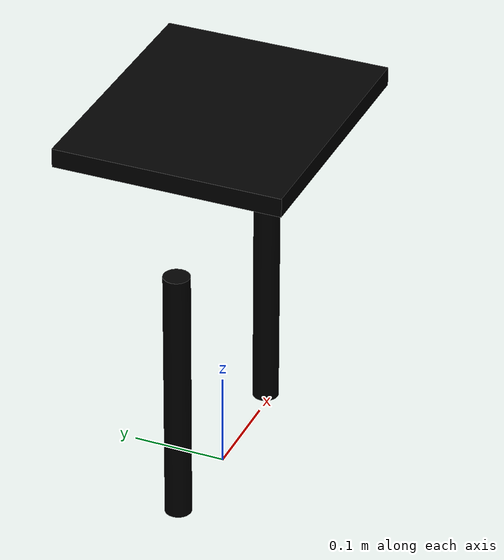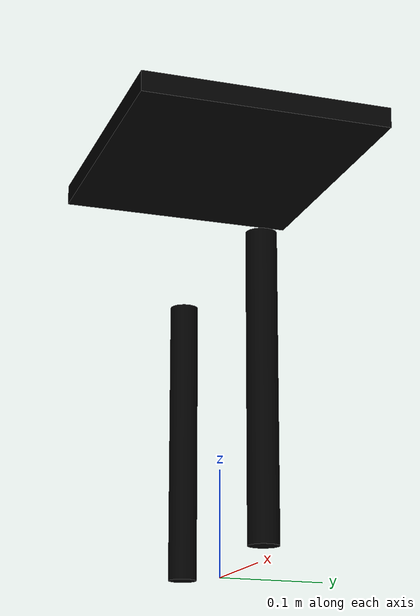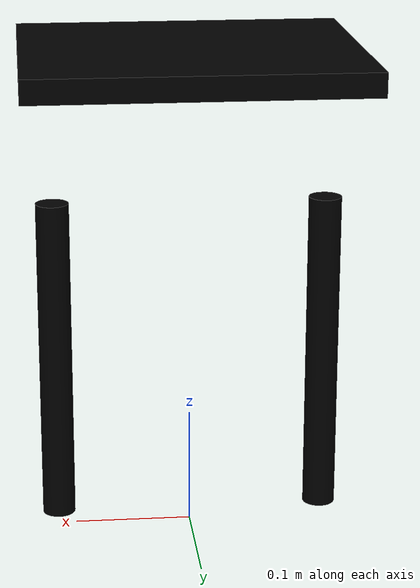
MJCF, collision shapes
<mujoco model="chair_bernhard_0146">
  <custom>
    <numeric data="-0.025053 0.074995 0.03398 -0.707107 -8e-06 0.707107 -8e-06" name="0_part0_initpos" />
    <numeric data="-0.25 0.224993 0.034049 0.707107 8e-06 0.707107 -8e-06" name="1_part1_initpos" />
    <numeric data="-0.274994 -0.18096 0.010682 0.002099 -0.005231 -0.928024 0.372477" name="2_part2_initpos" />
  </custom>
  <asset>
    <mesh file="chair_bernhard_0146/left_leg.stl" name="0_part0" scale="0.576 0.576 0.576" />
    <mesh file="chair_bernhard_0146/right_leg.stl" name="1_part1" scale="0.576 0.576 0.576" />
    <mesh file="chair_bernhard_0146/seat.stl" name="2_part2" scale="0.576 0.576 0.576" />
    <texture file="../textures/light-wood.png" name="tex-light-wood" type="2d" />
    <material name="light-wood" reflectance="0.5" texrepeat="20 20" texture="tex-light-wood" texuniform="true" />
  </asset>
  <worldbody>
  <inertial mass="5.0" diaginertia="0.05 0.05 0.05" pos="0 0 0" />
  <body name="combined_body" pos="0 0 -0.03" quat="0 0 0 1"><geom conaffinity="0" contype="0" density="0" material="light-wood" mesh="0_part0" name="0_part0_geom" pos="-0.115 0.0 0.182" rgba="0.82 0.71 0.55 1" solref="0.001 1" type="mesh" quat="1 0 0 0" />
      <geom density="50" name="noviz_collision_0_part0_1" pos="-0.115 0.0 0.182" rgba="0 0 0 0" size="0.014 0.14" solref="0.001 1" type="cylinder" quat="1 0 0 0" />
      <geom density="50" name="noviz_collision_0_part0_2" pos="-0.115 0.0 0.182" rgba="0 0 0 0" size="0.014 0.14" solref="0.001 1" type="cylinder" quat="1 0 0 0" />
      <geom density="50" name="noviz_collision_0_part0_3" pos="-0.115 0.0 0.182" rgba="0 0 0 0" size="0.014 0.14" solref="0.001 1" type="cylinder" quat="1 0 0 0" />
      <site group="1" name="0_part0_ltgt_site0" pos="-0.115 0.0 0.182" rgba="0 0 0 0" size="0.01 0.01 0.01" type="sphere" quat="1 0 0 0" />
      <site group="1" name="0_part0_rtgt_site0" pos="-0.115 0.0 0.182" rgba="0 0 0 0" size="0.01 0.01 0.01" type="sphere" quat="1 0 0 0" />
      <site name="part1-part3,0,conn_site1" pos="-0.115 0.0 0.182" quat="1 0 0 0" rgba="0.9019 0.0980 0.2941 0.3" size="0.01" />
      <site name="0_part0_corner_site1" pos="-0.115 0.0 0.182" rgba="0 0 0 0" size="0.0057" quat="1 0 0 0" />
      <site name="0_part0_corner_site2" pos="-0.115 0.0 0.182" rgba="0 0 0 0" size="0.0057" quat="1 0 0 0" />
      <site name="0_part0_corner_site3" pos="-0.115 0.0 0.182" rgba="0 0 0 0" size="0.0057" quat="1 0 0 0" />
      <site name="0_part0_corner_site4" pos="-0.115 0.0 0.182" rgba="0 0 0 0" size="0.0057" quat="1 0 0 0" />
      <site name="0_part0_corner_site5" pos="-0.115 0.0 0.182" rgba="0 0 0 0" size="0.0057" quat="1 0 0 0" />
      <site name="0_part0_corner_site6" pos="-0.115 0.0 0.182" rgba="0 0 0 0" size="0.0057" quat="1 0 0 0" />
      <site name="0_part0_bottom_site" pos="-0.115 0.0 0.182" rgba="0 0 0 0" size="0.0057" quat="1 0 0 0" />
      <site name="0_part0_top_site" pos="-0.115 0.0 0.182" rgba="0 0 0 0" size="0.0057" quat="1 0 0 0" />
      <site name="0_part0_horizontal_radius_site" pos="-0.115 0.0 0.182" rgba="0 0 0 0" size="0.0057" quat="1 0 0 0" />
    <geom conaffinity="0" contype="0" density="0" material="light-wood" mesh="1_part1" name="1_part1_geom" pos="0.1152 0.0 0.182" rgba="0.82 0.71 0.55 1" solref="0.001 1" type="mesh" quat="1 0 0 0" />
      <geom density="50" name="noviz_collision_1_part1_1" pos="0.1152 0.0 0.182" rgba="0 0 0 0" size="0.014 0.14" solref="0.001 1" type="cylinder" quat="1 0 0 0" />
      <geom density="50" name="noviz_collision_1_part1_2" pos="0.1152 0.0 0.182" rgba="0 0 0 0" size="0.014 0.14" solref="0.001 1" type="cylinder" quat="1 0 0 0" />
      <geom density="50" name="noviz_collision_1_part1_3" pos="0.1152 0.0 0.182" rgba="0 0 0 0" size="0.014 0.14" solref="0.001 1" type="cylinder" quat="1 0 0 0" />
      <site group="1" name="1_part1_ltgt_site0" pos="0.1152 0.0 0.182" rgba="0 0 0 0" size="0.01 0.01 0.01" type="sphere" quat="1 0 0 0" />
      <site group="1" name="1_part1_rtgt_site0" pos="0.1152 0.0 0.182" rgba="0 0 0 0" size="0.01 0.01 0.01" type="sphere" quat="1 0 0 0" />
      <site name="part2-part3,0,conn_site2" pos="0.1152 0.0 0.182" quat="1 0 0 0" rgba="0.2352 0.7058 0.2941 0.3" size="0.01" />
      <site name="1_part1_corner_site1" pos="0.1152 0.0 0.182" rgba="0 0 0 0" size="0.0057" quat="1 0 0 0" />
      <site name="1_part1_corner_site2" pos="0.1152 0.0 0.182" rgba="0 0 0 0" size="0.0057" quat="1 0 0 0" />
      <site name="1_part1_corner_site3" pos="0.1152 0.0 0.182" rgba="0 0 0 0" size="0.0057" quat="1 0 0 0" />
      <site name="1_part1_corner_site4" pos="0.1152 0.0 0.182" rgba="0 0 0 0" size="0.0057" quat="1 0 0 0" />
      <site name="1_part1_corner_site5" pos="0.1152 0.0 0.182" rgba="0 0 0 0" size="0.0057" quat="1 0 0 0" />
      <site name="1_part1_corner_site6" pos="0.1152 0.0 0.182" rgba="0 0 0 0" size="0.0057" quat="1 0 0 0" />
      <site name="1_part1_bottom_site" pos="0.1152 0.0 0.182" rgba="0 0 0 0" size="0.0057" quat="1 0 0 0" />
      <site name="1_part1_top_site" pos="0.1152 0.0 0.182" rgba="0 0 0 0" size="0.0057" quat="1 0 0 0" />
      <site name="1_part1_horizontal_radius_site" pos="0.1152 0.0 0.182" rgba="0 0 0 0" size="0.0057" quat="1 0 0 0" />
    <geom conaffinity="0" contype="0" density="0" material="light-wood" mesh="2_part2" name="2_part2_geom" pos="0.0 0.0 0.4416" rgba="0.82 0.71 0.55 1" solref="0.001 1" type="mesh" quat="1 0 0 0" />
      <geom density="50" name="noviz_collision_2_part2_1" pos="0.0 0.0 0.4416" rgba="0 0 0 0" size="0.14 0.12 0.01" solref="0.001 1" type="box" quat="1 0 0 0" />
      <geom density="50" name="noviz_collision_2_part2_2" pos="0.0 0.0 0.4416" rgba="0 0 0 0" size="0.14 0.12 0.01" solref="0.001 1" type="box" quat="1 0 0 0" />
      <site name="part3-part1,0,conn_site1" pos="0.0 0.0 0.4416" quat="1 0 0 0" rgba="0.9019 0.0980 0.2941 0.3" size="0.01" />
      <site name="part3-part2,0,conn_site2" pos="0.0 0.0 0.4416" quat="1 0 0 0" rgba="0.2352 0.7058 0.2941 0.3" size="0.01" />
      <site name="2_part2_corner_site1" pos="0.0 0.0 0.4416" rgba="0 0 0 0" size="0.0057" quat="1 0 0 0" />
      <site name="2_part2_corner_site2" pos="0.0 0.0 0.4416" rgba="0 0 0 0" size="0.0057" quat="1 0 0 0" />
      <site name="2_part2_corner_site3" pos="0.0 0.0 0.4416" rgba="0 0 0 0" size="0.0057" quat="1 0 0 0" />
      <site name="2_part2_corner_site4" pos="0.0 0.0 0.4416" rgba="0 0 0 0" size="0.0057" quat="1 0 0 0" />
      <site name="2_part2_corner_site5" pos="0.0 0.0 0.4416" rgba="0 0 0 0" size="0.0057" quat="1 0 0 0" />
      <site name="2_part2_corner_site6" pos="0.0 0.0 0.4416" rgba="0 0 0 0" size="0.0057" quat="1 0 0 0" />
      <site name="2_part2_corner_site7" pos="0.0 0.0 0.4416" rgba="0 0 0 0" size="0.0057" quat="1 0 0 0" />
      <site name="2_part2_bottom_site" pos="0.0 0.0 0.4416" rgba="0 0 0 0" size="0.0057" quat="1 0 0 0" />
      <site name="2_part2_top_site" pos="0.0 0.0 0.4416" rgba="0 0 0 0" size="0.0057" quat="1 0 0 0" />
      <site name="2_part2_horizontal_radius_site" pos="0.0 0.0 0.4416" rgba="0 0 0 0" size="0.0057" quat="1 0 0 0" />
    </body></worldbody><actuator /><sensor /><contact /><default /></mujoco>
